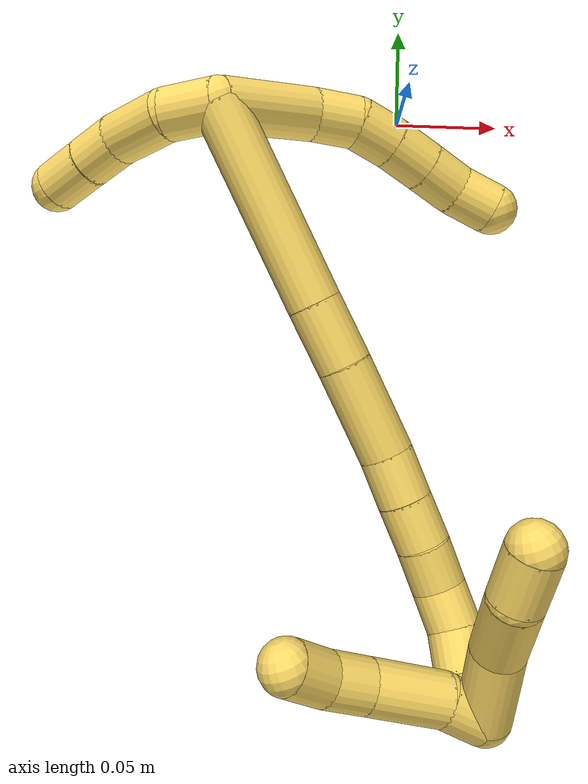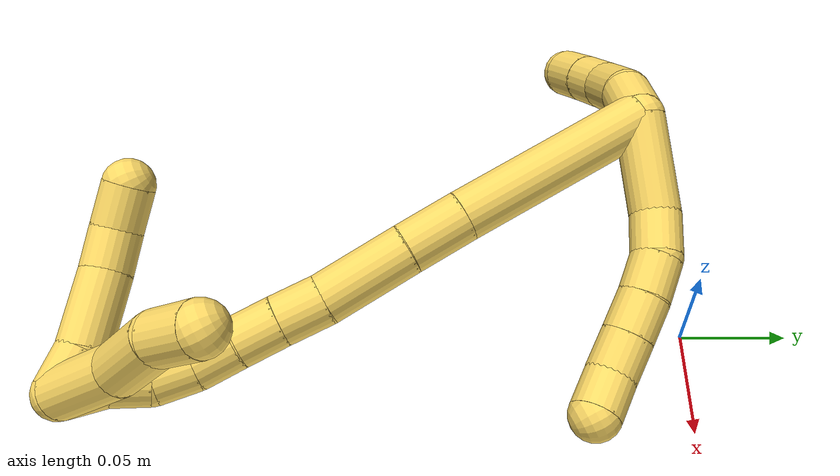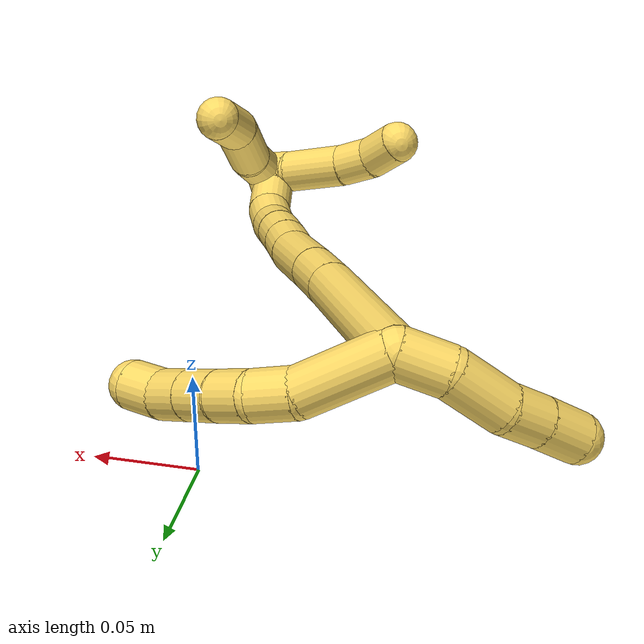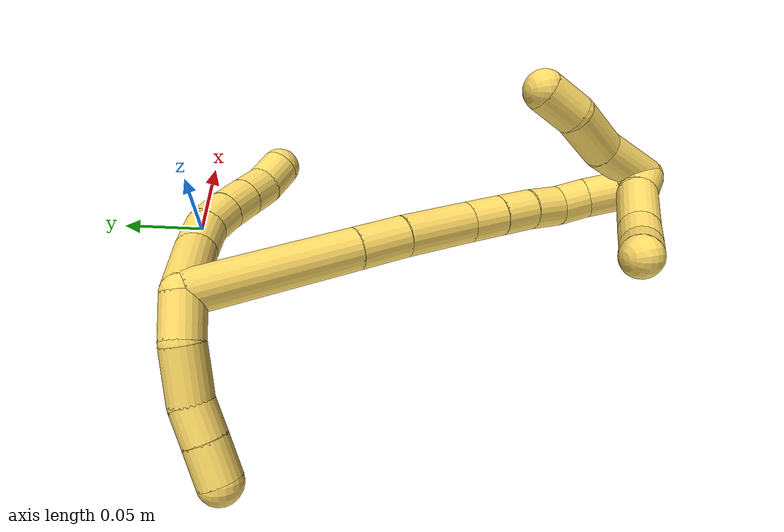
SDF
<sdf version="1.7">
 <world name="default">
  <model name="5">
   <static>0</static>
   <link name="5">
    <collision name="collision-cylinder-e_1_2_8">
     <pose>0.004094 -0.022208 0.008207 1.21682 0.171225 0.119418</pose>
     <geometry><cylinder><radius>0.0125</radius><length>0.048055</length></cylinder></geometry>
     <surface>
      <friction><ode><mu>1.16</mu><mu2>1.16</mu2><slip1>0</slip1><slip2>0</slip2></ode></friction>
      <contact><ode><kp>1e+06</kp><kd>1</kd><max_vel>0</max_vel><min_depth>0.001</min_depth></ode></contact>
     </surface>
    </collision>
    <visual name="visual-cylinder-e_1_2_8">
     <pose>0.004094 -0.022208 0.008207 1.21682 0.171225 0.119418</pose>
     <geometry><cylinder><radius>0.0125</radius><length>0.048055</length></cylinder></geometry>
     <material><ambient>1 0.858824 0.4 1</ambient></material>
    </visual>
    <collision name="collision-cylinder-e_2_8_9">
     <pose>0.012627 -0.052926 0.021627 1.02115 0.418514 0.236786</pose>
     <geometry><cylinder><radius>0.0125</radius><length>0.021844</length></cylinder></geometry>
     <surface>
      <friction><ode><mu>1.16</mu><mu2>1.16</mu2><slip1>0</slip1><slip2>0</slip2></ode></friction>
      <contact><ode><kp>1e+06</kp><kd>1</kd><max_vel>0</max_vel><min_depth>0.001</min_depth></ode></contact>
     </surface>
    </collision>
    <visual name="visual-cylinder-e_2_8_9">
     <pose>0.012627 -0.052926 0.021627 1.02115 0.418514 0.236786</pose>
     <geometry><cylinder><radius>0.0125</radius><length>0.021844</length></cylinder></geometry>
     <material><ambient>1 0.858824 0.4 1</ambient></material>
    </visual>
    <collision name="collision-cylinder-e_3_9_10">
     <pose>0.019656 -0.067787 0.034132 0.716549 0.261786 0.098506</pose>
     <geometry><cylinder><radius>0.0125</radius><length>0.020024</length></cylinder></geometry>
     <surface>
      <friction><ode><mu>1.16</mu><mu2>1.16</mu2><slip1>0</slip1><slip2>0</slip2></ode></friction>
      <contact><ode><kp>1e+06</kp><kd>1</kd><max_vel>0</max_vel><min_depth>0.001</min_depth></ode></contact>
     </surface>
    </collision>
    <visual name="visual-cylinder-e_3_9_10">
     <pose>0.019656 -0.067787 0.034132 0.716549 0.261786 0.098506</pose>
     <geometry><cylinder><radius>0.0125</radius><length>0.020024</length></cylinder></geometry>
     <material><ambient>1 0.858824 0.4 1</ambient></material>
    </visual>
    <collision name="collision-cylinder-e_4_10_11">
     <pose>0.024406 -0.079968 0.049261 0.639622 0.21747 0.072275</pose>
     <geometry><cylinder><radius>0.0125</radius><length>0.020005</length></cylinder></geometry>
     <surface>
      <friction><ode><mu>1.16</mu><mu2>1.16</mu2><slip1>0</slip1><slip2>0</slip2></ode></friction>
      <contact><ode><kp>1e+06</kp><kd>1</kd><max_vel>0</max_vel><min_depth>0.001</min_depth></ode></contact>
     </surface>
    </collision>
    <visual name="visual-cylinder-e_4_10_11">
     <pose>0.024406 -0.079968 0.049261 0.639622 0.21747 0.072275</pose>
     <geometry><cylinder><radius>0.0125</radius><length>0.020005</length></cylinder></geometry>
     <material><ambient>1 0.858824 0.4 1</ambient></material>
    </visual>
    <collision name="collision-cylinder-e_5_11_12">
     <pose>0.028649 -0.091596 0.065003 0.632828 0.209591 0.068848</pose>
     <geometry><cylinder><radius>0.0125</radius><length>0.020048</length></cylinder></geometry>
     <surface>
      <friction><ode><mu>1.16</mu><mu2>1.16</mu2><slip1>0</slip1><slip2>0</slip2></ode></friction>
      <contact><ode><kp>1e+06</kp><kd>1</kd><max_vel>0</max_vel><min_depth>0.001</min_depth></ode></contact>
     </surface>
    </collision>
    <visual name="visual-cylinder-e_5_11_12">
     <pose>0.028649 -0.091596 0.065003 0.632828 0.209591 0.068848</pose>
     <geometry><cylinder><radius>0.0125</radius><length>0.020048</length></cylinder></geometry>
     <material><ambient>1 0.858824 0.4 1</ambient></material>
    </visual>
    <collision name="collision-cylinder-e_6_12_6">
     <pose>0.035284 -0.102342 0.080331 0.587911 0.471603 0.145217</pose>
     <geometry><cylinder><radius>0.0125</radius><length>0.020025</length></cylinder></geometry>
     <surface>
      <friction><ode><mu>1.16</mu><mu2>1.16</mu2><slip1>0</slip1><slip2>0</slip2></ode></friction>
      <contact><ode><kp>1e+06</kp><kd>1</kd><max_vel>0</max_vel><min_depth>0.001</min_depth></ode></contact>
     </surface>
    </collision>
    <visual name="visual-cylinder-e_6_12_6">
     <pose>0.035284 -0.102342 0.080331 0.587911 0.471603 0.145217</pose>
     <geometry><cylinder><radius>0.0125</radius><length>0.020025</length></cylinder></geometry>
     <material><ambient>1 0.858824 0.4 1</ambient></material>
    </visual>
    <collision name="collision-cylinder-e_1_2_13">
     <pose>-0.010809 0.006431 -0.002367 -1.92352 -1.00575 1.33552</pose>
     <geometry><cylinder><radius>0.0125</radius><length>0.025597</length></cylinder></geometry>
     <surface>
      <friction><ode><mu>1.16</mu><mu2>1.16</mu2><slip1>0</slip1><slip2>0</slip2></ode></friction>
      <contact><ode><kp>1e+06</kp><kd>1</kd><max_vel>0</max_vel><min_depth>0.001</min_depth></ode></contact>
     </surface>
    </collision>
    <visual name="visual-cylinder-e_1_2_13">
     <pose>-0.010809 0.006431 -0.002367 -1.92352 -1.00575 1.33552</pose>
     <geometry><cylinder><radius>0.0125</radius><length>0.025597</length></cylinder></geometry>
     <material><ambient>1 0.858824 0.4 1</ambient></material>
    </visual>
    <collision name="collision-cylinder-e_2_13_14">
     <pose>-0.036602 0.01715 -0.004545 -1.52658 -1.29178 1.24953</pose>
     <geometry><cylinder><radius>0.0125</radius><length>0.031173</length></cylinder></geometry>
     <surface>
      <friction><ode><mu>1.16</mu><mu2>1.16</mu2><slip1>0</slip1><slip2>0</slip2></ode></friction>
      <contact><ode><kp>1e+06</kp><kd>1</kd><max_vel>0</max_vel><min_depth>0.001</min_depth></ode></contact>
     </surface>
    </collision>
    <visual name="visual-cylinder-e_2_13_14">
     <pose>-0.036602 0.01715 -0.004545 -1.52658 -1.29178 1.24953</pose>
     <geometry><cylinder><radius>0.0125</radius><length>0.031173</length></cylinder></geometry>
     <material><ambient>1 0.858824 0.4 1</ambient></material>
    </visual>
    <collision name="collision-cylinder-e_3_14_15">
     <pose>-0.060578 0.025762 -0.002411 -1.14816 -1.08568 0.744015</pose>
     <geometry><cylinder><radius>0.0125</radius><length>0.02033</length></cylinder></geometry>
     <surface>
      <friction><ode><mu>1.16</mu><mu2>1.16</mu2><slip1>0</slip1><slip2>0</slip2></ode></friction>
      <contact><ode><kp>1e+06</kp><kd>1</kd><max_vel>0</max_vel><min_depth>0.001</min_depth></ode></contact>
     </surface>
    </collision>
    <visual name="visual-cylinder-e_3_14_15">
     <pose>-0.060578 0.025762 -0.002411 -1.14816 -1.08568 0.744015</pose>
     <geometry><cylinder><radius>0.0125</radius><length>0.02033</length></cylinder></geometry>
     <material><ambient>1 0.858824 0.4 1</ambient></material>
    </visual>
    <collision name="collision-cylinder-e_4_15_5">
     <pose>-0.079872 0.034591 0.001698 -1.12298 -1.11906 0.750567</pose>
     <geometry><cylinder><radius>0.0125</radius><length>0.0229</length></cylinder></geometry>
     <surface>
      <friction><ode><mu>1.16</mu><mu2>1.16</mu2><slip1>0</slip1><slip2>0</slip2></ode></friction>
      <contact><ode><kp>1e+06</kp><kd>1</kd><max_vel>0</max_vel><min_depth>0.001</min_depth></ode></contact>
     </surface>
    </collision>
    <visual name="visual-cylinder-e_4_15_5">
     <pose>-0.079872 0.034591 0.001698 -1.12298 -1.11906 0.750567</pose>
     <geometry><cylinder><radius>0.0125</radius><length>0.0229</length></cylinder></geometry>
     <material><ambient>1 0.858824 0.4 1</ambient></material>
    </visual>
    <collision name="collision-cylinder-e_1_2_16">
     <pose>0.005562 -0.001279 0.048839 0.026174 0.113366 0.001485</pose>
     <geometry><cylinder><radius>0.0125</radius><length>0.098342</length></cylinder></geometry>
     <surface>
      <friction><ode><mu>1.16</mu><mu2>1.16</mu2><slip1>0</slip1><slip2>0</slip2></ode></friction>
      <contact><ode><kp>1e+06</kp><kd>1</kd><max_vel>0</max_vel><min_depth>0.001</min_depth></ode></contact>
     </surface>
    </collision>
    <visual name="visual-cylinder-e_1_2_16">
     <pose>0.005562 -0.001279 0.048839 0.026174 0.113366 0.001485</pose>
     <geometry><cylinder><radius>0.0125</radius><length>0.098342</length></cylinder></geometry>
     <material><ambient>1 0.858824 0.4 1</ambient></material>
    </visual>
    <collision name="collision-cylinder-e_2_16_17">
     <pose>0.012774 -0.003256 0.112909 0.045854 0.107711 0.002472</pose>
     <geometry><cylinder><radius>0.0125</radius><length>0.030673</length></cylinder></geometry>
     <surface>
      <friction><ode><mu>1.16</mu><mu2>1.16</mu2><slip1>0</slip1><slip2>0</slip2></ode></friction>
      <contact><ode><kp>1e+06</kp><kd>1</kd><max_vel>0</max_vel><min_depth>0.001</min_depth></ode></contact>
     </surface>
    </collision>
    <visual name="visual-cylinder-e_2_16_17">
     <pose>0.012774 -0.003256 0.112909 0.045854 0.107711 0.002472</pose>
     <geometry><cylinder><radius>0.0125</radius><length>0.030673</length></cylinder></geometry>
     <material><ambient>1 0.858824 0.4 1</ambient></material>
    </visual>
    <collision name="collision-cylinder-e_3_17_18">
     <pose>0.015899 -0.005327 0.150582 0.061069 0.06561 0.002005</pose>
     <geometry><cylinder><radius>0.0125</radius><length>0.045063</length></cylinder></geometry>
     <surface>
      <friction><ode><mu>1.16</mu><mu2>1.16</mu2><slip1>0</slip1><slip2>0</slip2></ode></friction>
      <contact><ode><kp>1e+06</kp><kd>1</kd><max_vel>0</max_vel><min_depth>0.001</min_depth></ode></contact>
     </surface>
    </collision>
    <visual name="visual-cylinder-e_3_17_18">
     <pose>0.015899 -0.005327 0.150582 0.061069 0.06561 0.002005</pose>
     <geometry><cylinder><radius>0.0125</radius><length>0.045063</length></cylinder></geometry>
     <material><ambient>1 0.858824 0.4 1</ambient></material>
    </visual>
    <collision name="collision-cylinder-e_4_18_19">
     <pose>0.018424 -0.006255 0.184332 -0.039235 0.0923 -0.001812</pose>
     <geometry><cylinder><radius>0.0125</radius><length>0.022733</length></cylinder></geometry>
     <surface>
      <friction><ode><mu>1.16</mu><mu2>1.16</mu2><slip1>0</slip1><slip2>0</slip2></ode></friction>
      <contact><ode><kp>1e+06</kp><kd>1</kd><max_vel>0</max_vel><min_depth>0.001</min_depth></ode></contact>
     </surface>
    </collision>
    <visual name="visual-cylinder-e_4_18_19">
     <pose>0.018424 -0.006255 0.184332 -0.039235 0.0923 -0.001812</pose>
     <geometry><cylinder><radius>0.0125</radius><length>0.022733</length></cylinder></geometry>
     <material><ambient>1 0.858824 0.4 1</ambient></material>
    </visual>
    <collision name="collision-cylinder-e_5_19_20">
     <pose>0.020395 -0.00565 0.206504 -0.014826 0.084745 -0.000629</pose>
     <geometry><cylinder><radius>0.0125</radius><length>0.021806</length></cylinder></geometry>
     <surface>
      <friction><ode><mu>1.16</mu><mu2>1.16</mu2><slip1>0</slip1><slip2>0</slip2></ode></friction>
      <contact><ode><kp>1e+06</kp><kd>1</kd><max_vel>0</max_vel><min_depth>0.001</min_depth></ode></contact>
     </surface>
    </collision>
    <visual name="visual-cylinder-e_5_19_20">
     <pose>0.020395 -0.00565 0.206504 -0.014826 0.084745 -0.000629</pose>
     <geometry><cylinder><radius>0.0125</radius><length>0.021806</length></cylinder></geometry>
     <material><ambient>1 0.858824 0.4 1</ambient></material>
    </visual>
    <collision name="collision-cylinder-e_6_20_21">
     <pose>0.021399 -0.005563 0.227992 0.006932 0.007643 2.6e-05</pose>
     <geometry><cylinder><radius>0.0125</radius><length>0.021251</length></cylinder></geometry>
     <surface>
      <friction><ode><mu>1.16</mu><mu2>1.16</mu2><slip1>0</slip1><slip2>0</slip2></ode></friction>
      <contact><ode><kp>1e+06</kp><kd>1</kd><max_vel>0</max_vel><min_depth>0.001</min_depth></ode></contact>
     </surface>
    </collision>
    <visual name="visual-cylinder-e_6_20_21">
     <pose>0.021399 -0.005563 0.227992 0.006932 0.007643 2.6e-05</pose>
     <geometry><cylinder><radius>0.0125</radius><length>0.021251</length></cylinder></geometry>
     <material><ambient>1 0.858824 0.4 1</ambient></material>
    </visual>
    <collision name="collision-cylinder-e_7_21_22">
     <pose>0.023472 -0.003992 0.248283 -0.168569 0.200461 -0.016992</pose>
     <geometry><cylinder><radius>0.0125</radius><length>0.02001</length></cylinder></geometry>
     <surface>
      <friction><ode><mu>1.16</mu><mu2>1.16</mu2><slip1>0</slip1><slip2>0</slip2></ode></friction>
      <contact><ode><kp>1e+06</kp><kd>1</kd><max_vel>0</max_vel><min_depth>0.001</min_depth></ode></contact>
     </surface>
    </collision>
    <visual name="visual-cylinder-e_7_21_22">
     <pose>0.023472 -0.003992 0.248283 -0.168569 0.200461 -0.016992</pose>
     <geometry><cylinder><radius>0.0125</radius><length>0.02001</length></cylinder></geometry>
     <material><ambient>1 0.858824 0.4 1</ambient></material>
    </visual>
    <collision name="collision-cylinder-e_8_22_23">
     <pose>0.027766 0.00232 0.266534 -0.49789 0.231276 -0.059041</pose>
     <geometry><cylinder><radius>0.0125</radius><length>0.020077</length></cylinder></geometry>
     <surface>
      <friction><ode><mu>1.16</mu><mu2>1.16</mu2><slip1>0</slip1><slip2>0</slip2></ode></friction>
      <contact><ode><kp>1e+06</kp><kd>1</kd><max_vel>0</max_vel><min_depth>0.001</min_depth></ode></contact>
     </surface>
    </collision>
    <visual name="visual-cylinder-e_8_22_23">
     <pose>0.027766 0.00232 0.266534 -0.49789 0.231276 -0.059041</pose>
     <geometry><cylinder><radius>0.0125</radius><length>0.020077</length></cylinder></geometry>
     <material><ambient>1 0.858824 0.4 1</ambient></material>
    </visual>
    <collision name="collision-cylinder-e_9_23_1">
     <pose>0.034358 0.009344 0.283863 -0.26335 0.442501 -0.059563</pose>
     <geometry><cylinder><radius>0.0125</radius><length>0.020044</length></cylinder></geometry>
     <surface>
      <friction><ode><mu>1.16</mu><mu2>1.16</mu2><slip1>0</slip1><slip2>0</slip2></ode></friction>
      <contact><ode><kp>1e+06</kp><kd>1</kd><max_vel>0</max_vel><min_depth>0.001</min_depth></ode></contact>
     </surface>
    </collision>
    <visual name="visual-cylinder-e_9_23_1">
     <pose>0.034358 0.009344 0.283863 -0.26335 0.442501 -0.059563</pose>
     <geometry><cylinder><radius>0.0125</radius><length>0.020044</length></cylinder></geometry>
     <material><ambient>1 0.858824 0.4 1</ambient></material>
    </visual>
    <collision name="collision-cylinder-e_1_1_24">
     <pose>0.035198 0.017703 0.284917 -2.47898 -0.340056 0.925861</pose>
     <geometry><cylinder><radius>0.0125</radius><length>0.020695</length></cylinder></geometry>
     <surface>
      <friction><ode><mu>1.16</mu><mu2>1.16</mu2><slip1>0</slip1><slip2>0</slip2></ode></friction>
      <contact><ode><kp>1e+06</kp><kd>1</kd><max_vel>0</max_vel><min_depth>0.001</min_depth></ode></contact>
     </surface>
    </collision>
    <visual name="visual-cylinder-e_1_1_24">
     <pose>0.035198 0.017703 0.284917 -2.47898 -0.340056 0.925861</pose>
     <geometry><cylinder><radius>0.0125</radius><length>0.020695</length></cylinder></geometry>
     <material><ambient>1 0.858824 0.4 1</ambient></material>
    </visual>
    <collision name="collision-cylinder-e_2_24_25">
     <pose>0.024982 0.037099 0.266621 -2.24048 -0.37704 0.75133</pose>
     <geometry><cylinder><radius>0.0125</radius><length>0.036752</length></cylinder></geometry>
     <surface>
      <friction><ode><mu>1.16</mu><mu2>1.16</mu2><slip1>0</slip1><slip2>0</slip2></ode></friction>
      <contact><ode><kp>1e+06</kp><kd>1</kd><max_vel>0</max_vel><min_depth>0.001</min_depth></ode></contact>
     </surface>
    </collision>
    <visual name="visual-cylinder-e_2_24_25">
     <pose>0.024982 0.037099 0.266621 -2.24048 -0.37704 0.75133</pose>
     <geometry><cylinder><radius>0.0125</radius><length>0.036752</length></cylinder></geometry>
     <material><ambient>1 0.858824 0.4 1</ambient></material>
    </visual>
    <collision name="collision-cylinder-e_3_25_26">
     <pose>0.015809 0.058468 0.249727 -2.23858 -0.232782 0.473196</pose>
     <geometry><cylinder><radius>0.0125</radius><length>0.020873</length></cylinder></geometry>
     <surface>
      <friction><ode><mu>1.16</mu><mu2>1.16</mu2><slip1>0</slip1><slip2>0</slip2></ode></friction>
      <contact><ode><kp>1e+06</kp><kd>1</kd><max_vel>0</max_vel><min_depth>0.001</min_depth></ode></contact>
     </surface>
    </collision>
    <visual name="visual-cylinder-e_3_25_26">
     <pose>0.015809 0.058468 0.249727 -2.23858 -0.232782 0.473196</pose>
     <geometry><cylinder><radius>0.0125</radius><length>0.020873</length></cylinder></geometry>
     <material><ambient>1 0.858824 0.4 1</ambient></material>
    </visual>
    <collision name="collision-cylinder-e_4_26_4">
     <pose>0.013802 0.074313 0.235997 -2.32807 0.03702 -0.085894</pose>
     <geometry><cylinder><radius>0.0125</radius><length>0.02168</length></cylinder></geometry>
     <surface>
      <friction><ode><mu>1.16</mu><mu2>1.16</mu2><slip1>0</slip1><slip2>0</slip2></ode></friction>
      <contact><ode><kp>1e+06</kp><kd>1</kd><max_vel>0</max_vel><min_depth>0.001</min_depth></ode></contact>
     </surface>
    </collision>
    <visual name="visual-cylinder-e_4_26_4">
     <pose>0.013802 0.074313 0.235997 -2.32807 0.03702 -0.085894</pose>
     <geometry><cylinder><radius>0.0125</radius><length>0.02168</length></cylinder></geometry>
     <material><ambient>1 0.858824 0.4 1</ambient></material>
    </visual>
    <collision name="collision-cylinder-e_1_1_27">
     <pose>0.048755 0.010446 0.275523 3.06821 0.532953 2.87426</pose>
     <geometry><cylinder><radius>0.0125</radius><length>0.039778</length></cylinder></geometry>
     <surface>
      <friction><ode><mu>1.16</mu><mu2>1.16</mu2><slip1>0</slip1><slip2>0</slip2></ode></friction>
      <contact><ode><kp>1e+06</kp><kd>1</kd><max_vel>0</max_vel><min_depth>0.001</min_depth></ode></contact>
     </surface>
    </collision>
    <visual name="visual-cylinder-e_1_1_27">
     <pose>0.048755 0.010446 0.275523 3.06821 0.532953 2.87426</pose>
     <geometry><cylinder><radius>0.0125</radius><length>0.039778</length></cylinder></geometry>
     <material><ambient>1 0.858824 0.4 1</ambient></material>
    </visual>
    <collision name="collision-cylinder-e_2_27_28">
     <pose>0.070035 0.011115 0.245137 -2.99789 0.693645 -2.74845</pose>
     <geometry><cylinder><radius>0.0125</radius><length>0.034959</length></cylinder></geometry>
     <surface>
      <friction><ode><mu>1.16</mu><mu2>1.16</mu2><slip1>0</slip1><slip2>0</slip2></ode></friction>
      <contact><ode><kp>1e+06</kp><kd>1</kd><max_vel>0</max_vel><min_depth>0.001</min_depth></ode></contact>
     </surface>
    </collision>
    <visual name="visual-cylinder-e_2_27_28">
     <pose>0.070035 0.011115 0.245137 -2.99789 0.693645 -2.74845</pose>
     <geometry><cylinder><radius>0.0125</radius><length>0.034959</length></cylinder></geometry>
     <material><ambient>1 0.858824 0.4 1</ambient></material>
    </visual>
    <collision name="collision-cylinder-e_3_28_3">
     <pose>0.088431 0.010846 0.221706 2.92831 0.608488 2.48447</pose>
     <geometry><cylinder><radius>0.0125</radius><length>0.025264</length></cylinder></geometry>
     <surface>
      <friction><ode><mu>1.16</mu><mu2>1.16</mu2><slip1>0</slip1><slip2>0</slip2></ode></friction>
      <contact><ode><kp>1e+06</kp><kd>1</kd><max_vel>0</max_vel><min_depth>0.001</min_depth></ode></contact>
     </surface>
    </collision>
    <visual name="visual-cylinder-e_3_28_3">
     <pose>0.088431 0.010846 0.221706 2.92831 0.608488 2.48447</pose>
     <geometry><cylinder><radius>0.0125</radius><length>0.025264</length></cylinder></geometry>
     <material><ambient>1 0.858824 0.4 1</ambient></material>
    </visual>
    <collision name="collision-sphere-3">
     <pose>0.095652 0.008652 0.211576 0 -0 0</pose>
     <geometry><sphere><radius>0.0125</radius></sphere></geometry>
     <surface>
      <friction><ode><mu>1.16</mu><mu2>1.16</mu2><slip1>0</slip1><slip2>0</slip2></ode></friction>
      <contact><ode><kp>1e+06</kp><kd>1</kd><max_vel>0</max_vel><min_depth>0.001</min_depth></ode></contact>
     </surface>
    </collision>
    <visual name="visual-sphere-3">
     <pose>0.095652 0.008652 0.211576 0 -0 0</pose>
     <geometry><sphere><radius>0.0125</radius></sphere></geometry>
     <material><ambient>1 0.858824 0.4 1</ambient></material>
    </visual>
    <collision name="collision-sphere-28">
     <pose>0.08121 0.013039 0.231836 0 -0 0</pose>
     <geometry><sphere><radius>0.0125</radius></sphere></geometry>
     <surface>
      <friction><ode><mu>1.16</mu><mu2>1.16</mu2><slip1>0</slip1><slip2>0</slip2></ode></friction>
      <contact><ode><kp>1e+06</kp><kd>1</kd><max_vel>0</max_vel><min_depth>0.001</min_depth></ode></contact>
     </surface>
    </collision>
    <visual name="visual-sphere-28">
     <pose>0.08121 0.013039 0.231836 0 -0 0</pose>
     <geometry><sphere><radius>0.0125</radius></sphere></geometry>
     <material><ambient>1 0.858824 0.4 1</ambient></material>
    </visual>
    <collision name="collision-sphere-27">
     <pose>0.05886 0.00919 0.258439 0 -0 0</pose>
     <geometry><sphere><radius>0.0125</radius></sphere></geometry>
     <surface>
      <friction><ode><mu>1.16</mu><mu2>1.16</mu2><slip1>0</slip1><slip2>0</slip2></ode></friction>
      <contact><ode><kp>1e+06</kp><kd>1</kd><max_vel>0</max_vel><min_depth>0.001</min_depth></ode></contact>
     </surface>
    </collision>
    <visual name="visual-sphere-27">
     <pose>0.05886 0.00919 0.258439 0 -0 0</pose>
     <geometry><sphere><radius>0.0125</radius></sphere></geometry>
     <material><ambient>1 0.858824 0.4 1</ambient></material>
    </visual>
    <collision name="collision-sphere-4">
     <pose>0.014203 0.082186 0.228556 0 -0 0</pose>
     <geometry><sphere><radius>0.0125</radius></sphere></geometry>
     <surface>
      <friction><ode><mu>1.16</mu><mu2>1.16</mu2><slip1>0</slip1><slip2>0</slip2></ode></friction>
      <contact><ode><kp>1e+06</kp><kd>1</kd><max_vel>0</max_vel><min_depth>0.001</min_depth></ode></contact>
     </surface>
    </collision>
    <visual name="visual-sphere-4">
     <pose>0.014203 0.082186 0.228556 0 -0 0</pose>
     <geometry><sphere><radius>0.0125</radius></sphere></geometry>
     <material><ambient>1 0.858824 0.4 1</ambient></material>
    </visual>
    <collision name="collision-sphere-26">
     <pose>0.013401 0.066441 0.243439 0 -0 0</pose>
     <geometry><sphere><radius>0.0125</radius></sphere></geometry>
     <surface>
      <friction><ode><mu>1.16</mu><mu2>1.16</mu2><slip1>0</slip1><slip2>0</slip2></ode></friction>
      <contact><ode><kp>1e+06</kp><kd>1</kd><max_vel>0</max_vel><min_depth>0.001</min_depth></ode></contact>
     </surface>
    </collision>
    <visual name="visual-sphere-26">
     <pose>0.013401 0.066441 0.243439 0 -0 0</pose>
     <geometry><sphere><radius>0.0125</radius></sphere></geometry>
     <material><ambient>1 0.858824 0.4 1</ambient></material>
    </visual>
    <collision name="collision-sphere-25">
     <pose>0.018216 0.050494 0.256016 0 -0 0</pose>
     <geometry><sphere><radius>0.0125</radius></sphere></geometry>
     <surface>
      <friction><ode><mu>1.16</mu><mu2>1.16</mu2><slip1>0</slip1><slip2>0</slip2></ode></friction>
      <contact><ode><kp>1e+06</kp><kd>1</kd><max_vel>0</max_vel><min_depth>0.001</min_depth></ode></contact>
     </surface>
    </collision>
    <visual name="visual-sphere-25">
     <pose>0.018216 0.050494 0.256016 0 -0 0</pose>
     <geometry><sphere><radius>0.0125</radius></sphere></geometry>
     <material><ambient>1 0.858824 0.4 1</ambient></material>
    </visual>
    <collision name="collision-sphere-24">
     <pose>0.031747 0.023704 0.277227 0 -0 0</pose>
     <geometry><sphere><radius>0.0125</radius></sphere></geometry>
     <surface>
      <friction><ode><mu>1.16</mu><mu2>1.16</mu2><slip1>0</slip1><slip2>0</slip2></ode></friction>
      <contact><ode><kp>1e+06</kp><kd>1</kd><max_vel>0</max_vel><min_depth>0.001</min_depth></ode></contact>
     </surface>
    </collision>
    <visual name="visual-sphere-24">
     <pose>0.031747 0.023704 0.277227 0 -0 0</pose>
     <geometry><sphere><radius>0.0125</radius></sphere></geometry>
     <material><ambient>1 0.858824 0.4 1</ambient></material>
    </visual>
    <collision name="collision-sphere-1">
     <pose>0.03865 0.011702 0.292608 0 -0 0</pose>
     <geometry><sphere><radius>0.0125</radius></sphere></geometry>
     <surface>
      <friction><ode><mu>1.16</mu><mu2>1.16</mu2><slip1>0</slip1><slip2>0</slip2></ode></friction>
      <contact><ode><kp>1e+06</kp><kd>1</kd><max_vel>0</max_vel><min_depth>0.001</min_depth></ode></contact>
     </surface>
    </collision>
    <visual name="visual-sphere-1">
     <pose>0.03865 0.011702 0.292608 0 -0 0</pose>
     <geometry><sphere><radius>0.0125</radius></sphere></geometry>
     <material><ambient>1 0.858824 0.4 1</ambient></material>
    </visual>
    <collision name="collision-sphere-23">
     <pose>0.030067 0.006986 0.275119 0 -0 0</pose>
     <geometry><sphere><radius>0.0125</radius></sphere></geometry>
     <surface>
      <friction><ode><mu>1.16</mu><mu2>1.16</mu2><slip1>0</slip1><slip2>0</slip2></ode></friction>
      <contact><ode><kp>1e+06</kp><kd>1</kd><max_vel>0</max_vel><min_depth>0.001</min_depth></ode></contact>
     </surface>
    </collision>
    <visual name="visual-sphere-23">
     <pose>0.030067 0.006986 0.275119 0 -0 0</pose>
     <geometry><sphere><radius>0.0125</radius></sphere></geometry>
     <material><ambient>1 0.858824 0.4 1</ambient></material>
    </visual>
    <collision name="collision-sphere-22">
     <pose>0.025465 -0.002347 0.257949 0 -0 0</pose>
     <geometry><sphere><radius>0.0125</radius></sphere></geometry>
     <surface>
      <friction><ode><mu>1.16</mu><mu2>1.16</mu2><slip1>0</slip1><slip2>0</slip2></ode></friction>
      <contact><ode><kp>1e+06</kp><kd>1</kd><max_vel>0</max_vel><min_depth>0.001</min_depth></ode></contact>
     </surface>
    </collision>
    <visual name="visual-sphere-22">
     <pose>0.025465 -0.002347 0.257949 0 -0 0</pose>
     <geometry><sphere><radius>0.0125</radius></sphere></geometry>
     <material><ambient>1 0.858824 0.4 1</ambient></material>
    </visual>
    <collision name="collision-sphere-21">
     <pose>0.02148 -0.005637 0.238617 0 -0 0</pose>
     <geometry><sphere><radius>0.0125</radius></sphere></geometry>
     <surface>
      <friction><ode><mu>1.16</mu><mu2>1.16</mu2><slip1>0</slip1><slip2>0</slip2></ode></friction>
      <contact><ode><kp>1e+06</kp><kd>1</kd><max_vel>0</max_vel><min_depth>0.001</min_depth></ode></contact>
     </surface>
    </collision>
    <visual name="visual-sphere-21">
     <pose>0.02148 -0.005637 0.238617 0 -0 0</pose>
     <geometry><sphere><radius>0.0125</radius></sphere></geometry>
     <material><ambient>1 0.858824 0.4 1</ambient></material>
    </visual>
    <collision name="collision-sphere-12">
     <pose>0.030735 -0.097395 0.072909 0 -0 0</pose>
     <geometry><sphere><radius>0.0125</radius></sphere></geometry>
     <surface>
      <friction><ode><mu>1.16</mu><mu2>1.16</mu2><slip1>0</slip1><slip2>0</slip2></ode></friction>
      <contact><ode><kp>1e+06</kp><kd>1</kd><max_vel>0</max_vel><min_depth>0.001</min_depth></ode></contact>
     </surface>
    </collision>
    <visual name="visual-sphere-12">
     <pose>0.030735 -0.097395 0.072909 0 -0 0</pose>
     <geometry><sphere><radius>0.0125</radius></sphere></geometry>
     <material><ambient>1 0.858824 0.4 1</ambient></material>
    </visual>
    <collision name="collision-sphere-11">
     <pose>0.026564 -0.085798 0.057097 0 -0 0</pose>
     <geometry><sphere><radius>0.0125</radius></sphere></geometry>
     <surface>
      <friction><ode><mu>1.16</mu><mu2>1.16</mu2><slip1>0</slip1><slip2>0</slip2></ode></friction>
      <contact><ode><kp>1e+06</kp><kd>1</kd><max_vel>0</max_vel><min_depth>0.001</min_depth></ode></contact>
     </surface>
    </collision>
    <visual name="visual-sphere-11">
     <pose>0.026564 -0.085798 0.057097 0 -0 0</pose>
     <geometry><sphere><radius>0.0125</radius></sphere></geometry>
     <material><ambient>1 0.858824 0.4 1</ambient></material>
    </visual>
    <collision name="collision-sphere-10">
     <pose>0.022248 -0.074138 0.041425 0 -0 0</pose>
     <geometry><sphere><radius>0.0125</radius></sphere></geometry>
     <surface>
      <friction><ode><mu>1.16</mu><mu2>1.16</mu2><slip1>0</slip1><slip2>0</slip2></ode></friction>
      <contact><ode><kp>1e+06</kp><kd>1</kd><max_vel>0</max_vel><min_depth>0.001</min_depth></ode></contact>
     </surface>
    </collision>
    <visual name="visual-sphere-10">
     <pose>0.022248 -0.074138 0.041425 0 -0 0</pose>
     <geometry><sphere><radius>0.0125</radius></sphere></geometry>
     <material><ambient>1 0.858824 0.4 1</ambient></material>
    </visual>
    <collision name="collision-sphere-9">
     <pose>0.017065 -0.061435 0.02684 0 -0 0</pose>
     <geometry><sphere><radius>0.0125</radius></sphere></geometry>
     <surface>
      <friction><ode><mu>1.16</mu><mu2>1.16</mu2><slip1>0</slip1><slip2>0</slip2></ode></friction>
      <contact><ode><kp>1e+06</kp><kd>1</kd><max_vel>0</max_vel><min_depth>0.001</min_depth></ode></contact>
     </surface>
    </collision>
    <visual name="visual-sphere-9">
     <pose>0.017065 -0.061435 0.02684 0 -0 0</pose>
     <geometry><sphere><radius>0.0125</radius></sphere></geometry>
     <material><ambient>1 0.858824 0.4 1</ambient></material>
    </visual>
    <collision name="collision-sphere-2">
     <geometry><sphere><radius>0.0125</radius></sphere></geometry>
     <surface>
      <friction><ode><mu>1.16</mu><mu2>1.16</mu2><slip1>0</slip1><slip2>0</slip2></ode></friction>
      <contact><ode><kp>1e+06</kp><kd>1</kd><max_vel>0</max_vel><min_depth>0.001</min_depth></ode></contact>
     </surface>
    </collision>
    <visual name="visual-sphere-2">
     <geometry><sphere><radius>0.0125</radius></sphere></geometry>
     <material><ambient>1 0.858824 0.4 1</ambient></material>
    </visual>
    <collision name="collision-sphere-19">
     <pose>0.019472 -0.005811 0.195642 0 -0 0</pose>
     <geometry><sphere><radius>0.0125</radius></sphere></geometry>
     <surface>
      <friction><ode><mu>1.16</mu><mu2>1.16</mu2><slip1>0</slip1><slip2>0</slip2></ode></friction>
      <contact><ode><kp>1e+06</kp><kd>1</kd><max_vel>0</max_vel><min_depth>0.001</min_depth></ode></contact>
     </surface>
    </collision>
    <visual name="visual-sphere-19">
     <pose>0.019472 -0.005811 0.195642 0 -0 0</pose>
     <geometry><sphere><radius>0.0125</radius></sphere></geometry>
     <material><ambient>1 0.858824 0.4 1</ambient></material>
    </visual>
    <collision name="collision-sphere-8">
     <pose>0.008188 -0.044416 0.016414 0 -0 0</pose>
     <geometry><sphere><radius>0.0125</radius></sphere></geometry>
     <surface>
      <friction><ode><mu>1.16</mu><mu2>1.16</mu2><slip1>0</slip1><slip2>0</slip2></ode></friction>
      <contact><ode><kp>1e+06</kp><kd>1</kd><max_vel>0</max_vel><min_depth>0.001</min_depth></ode></contact>
     </surface>
    </collision>
    <visual name="visual-sphere-8">
     <pose>0.008188 -0.044416 0.016414 0 -0 0</pose>
     <geometry><sphere><radius>0.0125</radius></sphere></geometry>
     <material><ambient>1 0.858824 0.4 1</ambient></material>
    </visual>
    <collision name="collision-sphere-6">
     <pose>0.039833 -0.107289 0.087753 0 -0 0</pose>
     <geometry><sphere><radius>0.0125</radius></sphere></geometry>
     <surface>
      <friction><ode><mu>1.16</mu><mu2>1.16</mu2><slip1>0</slip1><slip2>0</slip2></ode></friction>
      <contact><ode><kp>1e+06</kp><kd>1</kd><max_vel>0</max_vel><min_depth>0.001</min_depth></ode></contact>
     </surface>
    </collision>
    <visual name="visual-sphere-6">
     <pose>0.039833 -0.107289 0.087753 0 -0 0</pose>
     <geometry><sphere><radius>0.0125</radius></sphere></geometry>
     <material><ambient>1 0.858824 0.4 1</ambient></material>
    </visual>
    <collision name="collision-sphere-13">
     <pose>-0.021618 0.012862 -0.004735 0 -0 0</pose>
     <geometry><sphere><radius>0.0125</radius></sphere></geometry>
     <surface>
      <friction><ode><mu>1.16</mu><mu2>1.16</mu2><slip1>0</slip1><slip2>0</slip2></ode></friction>
      <contact><ode><kp>1e+06</kp><kd>1</kd><max_vel>0</max_vel><min_depth>0.001</min_depth></ode></contact>
     </surface>
    </collision>
    <visual name="visual-sphere-13">
     <pose>-0.021618 0.012862 -0.004735 0 -0 0</pose>
     <geometry><sphere><radius>0.0125</radius></sphere></geometry>
     <material><ambient>1 0.858824 0.4 1</ambient></material>
    </visual>
    <collision name="collision-sphere-14">
     <pose>-0.051586 0.021439 -0.004355 0 -0 0</pose>
     <geometry><sphere><radius>0.0125</radius></sphere></geometry>
     <surface>
      <friction><ode><mu>1.16</mu><mu2>1.16</mu2><slip1>0</slip1><slip2>0</slip2></ode></friction>
      <contact><ode><kp>1e+06</kp><kd>1</kd><max_vel>0</max_vel><min_depth>0.001</min_depth></ode></contact>
     </surface>
    </collision>
    <visual name="visual-sphere-14">
     <pose>-0.051586 0.021439 -0.004355 0 -0 0</pose>
     <geometry><sphere><radius>0.0125</radius></sphere></geometry>
     <material><ambient>1 0.858824 0.4 1</ambient></material>
    </visual>
    <collision name="collision-sphere-15">
     <pose>-0.06957 0.030085 -0.000467 0 -0 0</pose>
     <geometry><sphere><radius>0.0125</radius></sphere></geometry>
     <surface>
      <friction><ode><mu>1.16</mu><mu2>1.16</mu2><slip1>0</slip1><slip2>0</slip2></ode></friction>
      <contact><ode><kp>1e+06</kp><kd>1</kd><max_vel>0</max_vel><min_depth>0.001</min_depth></ode></contact>
     </surface>
    </collision>
    <visual name="visual-sphere-15">
     <pose>-0.06957 0.030085 -0.000467 0 -0 0</pose>
     <geometry><sphere><radius>0.0125</radius></sphere></geometry>
     <material><ambient>1 0.858824 0.4 1</ambient></material>
    </visual>
    <collision name="collision-sphere-5">
     <pose>-0.090173 0.039096 0.003862 0 -0 0</pose>
     <geometry><sphere><radius>0.0125</radius></sphere></geometry>
     <surface>
      <friction><ode><mu>1.16</mu><mu2>1.16</mu2><slip1>0</slip1><slip2>0</slip2></ode></friction>
      <contact><ode><kp>1e+06</kp><kd>1</kd><max_vel>0</max_vel><min_depth>0.001</min_depth></ode></contact>
     </surface>
    </collision>
    <visual name="visual-sphere-5">
     <pose>-0.090173 0.039096 0.003862 0 -0 0</pose>
     <geometry><sphere><radius>0.0125</radius></sphere></geometry>
     <material><ambient>1 0.858824 0.4 1</ambient></material>
    </visual>
    <collision name="collision-sphere-16">
     <pose>0.011125 -0.002557 0.097677 0 -0 0</pose>
     <geometry><sphere><radius>0.0125</radius></sphere></geometry>
     <surface>
      <friction><ode><mu>1.16</mu><mu2>1.16</mu2><slip1>0</slip1><slip2>0</slip2></ode></friction>
      <contact><ode><kp>1e+06</kp><kd>1</kd><max_vel>0</max_vel><min_depth>0.001</min_depth></ode></contact>
     </surface>
    </collision>
    <visual name="visual-sphere-16">
     <pose>0.011125 -0.002557 0.097677 0 -0 0</pose>
     <geometry><sphere><radius>0.0125</radius></sphere></geometry>
     <material><ambient>1 0.858824 0.4 1</ambient></material>
    </visual>
    <collision name="collision-sphere-17">
     <pose>0.014422 -0.003955 0.128141 0 -0 0</pose>
     <geometry><sphere><radius>0.0125</radius></sphere></geometry>
     <surface>
      <friction><ode><mu>1.16</mu><mu2>1.16</mu2><slip1>0</slip1><slip2>0</slip2></ode></friction>
      <contact><ode><kp>1e+06</kp><kd>1</kd><max_vel>0</max_vel><min_depth>0.001</min_depth></ode></contact>
     </surface>
    </collision>
    <visual name="visual-sphere-17">
     <pose>0.014422 -0.003955 0.128141 0 -0 0</pose>
     <geometry><sphere><radius>0.0125</radius></sphere></geometry>
     <material><ambient>1 0.858824 0.4 1</ambient></material>
    </visual>
    <collision name="collision-sphere-18">
     <pose>0.017377 -0.006699 0.173022 0 -0 0</pose>
     <geometry><sphere><radius>0.0125</radius></sphere></geometry>
     <surface>
      <friction><ode><mu>1.16</mu><mu2>1.16</mu2><slip1>0</slip1><slip2>0</slip2></ode></friction>
      <contact><ode><kp>1e+06</kp><kd>1</kd><max_vel>0</max_vel><min_depth>0.001</min_depth></ode></contact>
     </surface>
    </collision>
    <visual name="visual-sphere-18">
     <pose>0.017377 -0.006699 0.173022 0 -0 0</pose>
     <geometry><sphere><radius>0.0125</radius></sphere></geometry>
     <material><ambient>1 0.858824 0.4 1</ambient></material>
    </visual>
    <collision name="collision-sphere-20">
     <pose>0.021318 -0.005489 0.217367 0 -0 0</pose>
     <geometry><sphere><radius>0.0125</radius></sphere></geometry>
     <surface>
      <friction><ode><mu>1.16</mu><mu2>1.16</mu2><slip1>0</slip1><slip2>0</slip2></ode></friction>
      <contact><ode><kp>1e+06</kp><kd>1</kd><max_vel>0</max_vel><min_depth>0.001</min_depth></ode></contact>
     </surface>
    </collision>
    <visual name="visual-sphere-20">
     <pose>0.021318 -0.005489 0.217367 0 -0 0</pose>
     <geometry><sphere><radius>0.0125</radius></sphere></geometry>
     <material><ambient>1 0.858824 0.4 1</ambient></material>
    </visual>
    <inertial>
     <pose>0.015659 -0.002809 0.134652 0 -0 0</pose>
     <mass>0.75</mass>
     <inertia>
      <ixx>0.000135</ixx>
      <ixy>0</ixy>
      <ixz>0</ixz>
      <iyy>0.000145</iyy>
      <iyz>0</iyz>
      <izz>1.2e-05</izz>
     </inertia>
    </inertial>
   </link>
   <pose>-0.085788 -0.019343 0.062251 2.02279 -0.905263 0.042746</pose>
  </model>
 </world>
</sdf>
